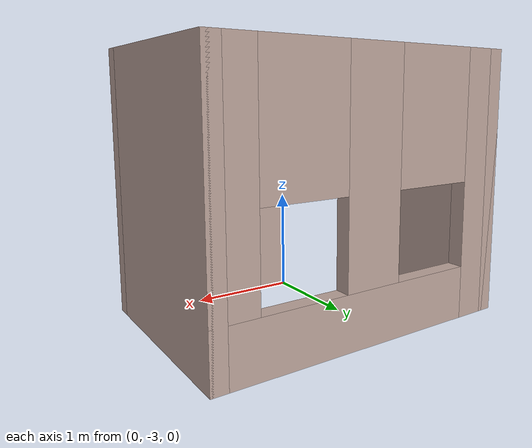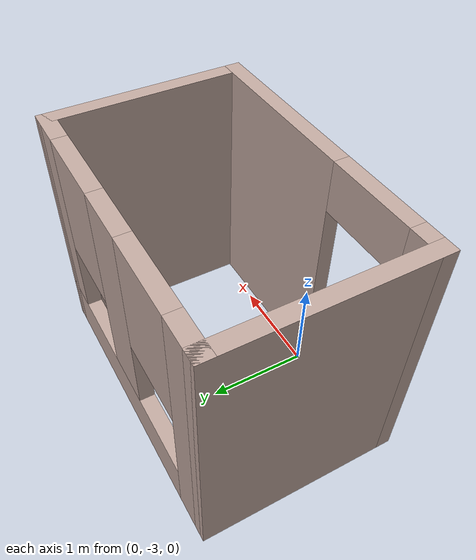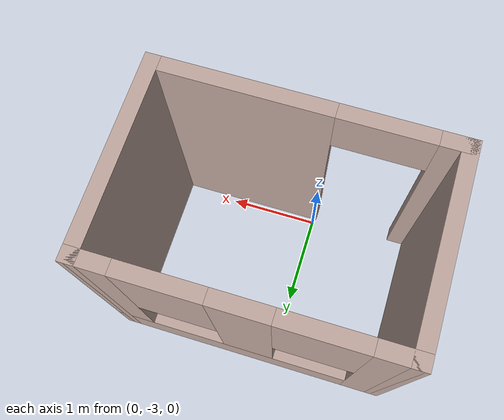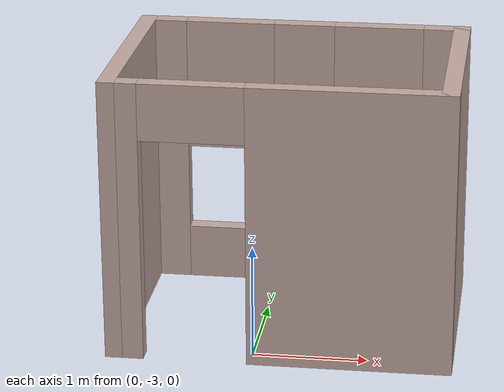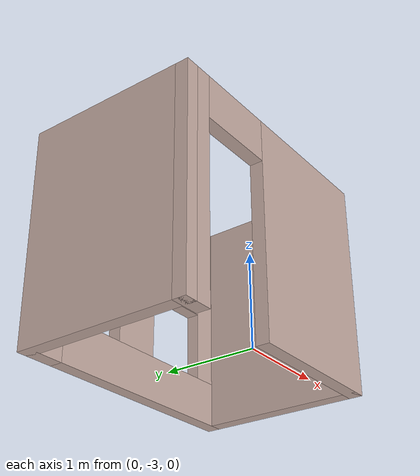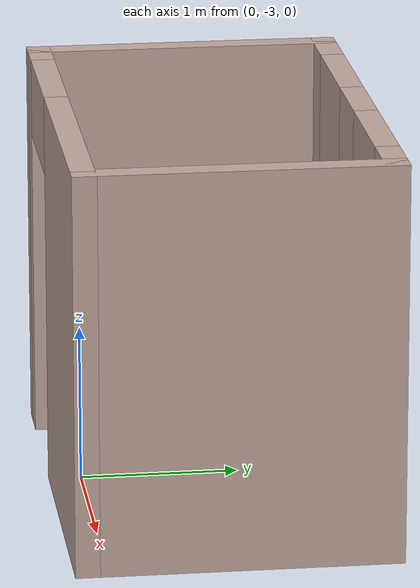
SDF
<?xml version='1.0'?>
<sdf version='1.7'>
  <model name='simple_room'>
    <pose>0.235 -1.6025 0 0 -0 0</pose>
    <link name='Wall_0'>
      <collision name='Wall_0_Collision'>
        <geometry>
          <box>
            <size>2 0.15 2.5</size>
          </box>
        </geometry>
        <pose>0 0 1.25 0 -0 0</pose>
      </collision>
      <visual name='Wall_0_Visual'>
        <pose>0 0 1.25 0 -0 0</pose>
        <geometry>
          <box>
            <size>2 0.15 2.5</size>
          </box>
        </geometry>
        <material>
          <script>
            <uri>file://media/materials/scripts/gazebo.material</uri>
            <name>Gazebo/Grey</name>
          </script>
          <ambient>0.760784 0.662745 0.627451 1</ambient>
        </material>
        <meta>
          <layer>0</layer>
        </meta>
      </visual>
      <pose>-1.425 -0.6025 0 0 -0 1.5708</pose>
    </link>
    <link name='Wall_1'>
      <pose>0 0.3225 0 0 -0 0</pose>
      <visual name='Wall_1_Visual_0'>
        <pose>-1.2825 0 1.25 0 -0 0</pose>
        <geometry>
          <box>
            <size>0.435 0.15 2.5</size>
          </box>
        </geometry>
        <material>
          <script>
            <uri>file://media/materials/scripts/gazebo.material</uri>
            <name>Gazebo/Grey</name>
          </script>
          <ambient>0.760784 0.662745 0.627451 1</ambient>
        </material>
        <meta>
          <layer>0</layer>
        </meta>
      </visual>
      <collision name='Wall_1_Collision_0'>
        <geometry>
          <box>
            <size>0.435 0.15 2.5</size>
          </box>
        </geometry>
        <pose>-1.2825 0 1.25 0 -0 0</pose>
      </collision>
      <visual name='Wall_1_Visual_1'>
        <pose>0.2175 0 0.25 0 -0 0</pose>
        <geometry>
          <box>
            <size>2.565 0.15 0.5</size>
          </box>
        </geometry>
        <material>
          <script>
            <uri>file://media/materials/scripts/gazebo.material</uri>
            <name>Gazebo/Grey</name>
          </script>
          <ambient>0.760784 0.662745 0.627451 1</ambient>
        </material>
        <meta>
          <layer>0</layer>
        </meta>
      </visual>
      <collision name='Wall_1_Collision_1'>
        <geometry>
          <box>
            <size>2.565 0.15 0.5</size>
          </box>
        </geometry>
        <pose>0.2175 0 0.25 0 -0 0</pose>
      </collision>
      <visual name='Wall_1_Visual_2'>
        <pose>0.01 0 1.5 0 -0 0</pose>
        <geometry>
          <box>
            <size>0.55 0.15 2</size>
          </box>
        </geometry>
        <material>
          <script>
            <uri>file://media/materials/scripts/gazebo.material</uri>
            <name>Gazebo/Grey</name>
          </script>
          <ambient>0.760784 0.662745 0.627451 1</ambient>
        </material>
        <meta>
          <layer>0</layer>
        </meta>
      </visual>
      <collision name='Wall_1_Collision_2'>
        <geometry>
          <box>
            <size>0.55 0.15 2</size>
          </box>
        </geometry>
        <pose>0.01 0 1.5 0 -0 0</pose>
      </collision>
      <visual name='Wall_1_Visual_3'>
        <pose>1.2925 0 1.5 0 -0 0</pose>
        <geometry>
          <box>
            <size>0.415 0.15 2</size>
          </box>
        </geometry>
        <material>
          <script>
            <uri>file://media/materials/scripts/gazebo.material</uri>
            <name>Gazebo/Grey</name>
          </script>
          <ambient>0.760784 0.662745 0.627451 1</ambient>
        </material>
        <meta>
          <layer>0</layer>
        </meta>
      </visual>
      <collision name='Wall_1_Collision_3'>
        <geometry>
          <box>
            <size>0.415 0.15 2</size>
          </box>
        </geometry>
        <pose>1.2925 0 1.5 0 -0 0</pose>
      </collision>
      <visual name='Wall_1_Visual_4'>
        <pose>-0.665 0 1.9 0 -0 0</pose>
        <geometry>
          <box>
            <size>0.8 0.15 1.2</size>
          </box>
        </geometry>
        <material>
          <script>
            <uri>file://media/materials/scripts/gazebo.material</uri>
            <name>Gazebo/Grey</name>
          </script>
          <ambient>0.760784 0.662745 0.627451 1</ambient>
        </material>
        <meta>
          <layer>0</layer>
        </meta>
      </visual>
      <collision name='Wall_1_Collision_4'>
        <geometry>
          <box>
            <size>0.8 0.15 1.2</size>
          </box>
        </geometry>
        <pose>-0.665 0 1.9 0 -0 0</pose>
      </collision>
      <visual name='Wall_1_Visual_5'>
        <pose>0.685 0 1.9 0 -0 0</pose>
        <geometry>
          <box>
            <size>0.8 0.15 1.2</size>
          </box>
        </geometry>
        <material>
          <script>
            <uri>file://media/materials/scripts/gazebo.material</uri>
            <name>Gazebo/Grey</name>
          </script>
          <ambient>0.760784 0.662745 0.627451 1</ambient>
        </material>
        <meta>
          <layer>0</layer>
        </meta>
      </visual>
      <collision name='Wall_1_Collision_5'>
        <geometry>
          <box>
            <size>0.8 0.15 1.2</size>
          </box>
        </geometry>
        <pose>0.685 0 1.9 0 -0 0</pose>
      </collision>
    </link>
    <link name='Wall_2'>
      <collision name='Wall_2_Collision'>
        <geometry>
          <box>
            <size>2 0.15 2.5</size>
          </box>
        </geometry>
        <pose>0 0 1.25 0 -0 0</pose>
      </collision>
      <visual name='Wall_2_Visual'>
        <pose>0 0 1.25 0 -0 0</pose>
        <geometry>
          <box>
            <size>2 0.15 2.5</size>
          </box>
        </geometry>
        <material>
          <script>
            <uri>file://media/materials/scripts/gazebo.material</uri>
            <name>Gazebo/Grey</name>
          </script>
          <ambient>0.760784 0.662745 0.627451 1</ambient>
        </material>
        <meta>
          <layer>0</layer>
        </meta>
      </visual>
      <pose>1.425 -0.6025 0 0 -0 -1.5708</pose>
    </link>
    <link name='Wall_3'>
      <pose>0 -1.5275 0 0 -0 3.14159</pose>
      <visual name='Wall_3_Visual_0'>
        <pose>-0.6175 0 1.25 0 -0 0</pose>
        <geometry>
          <box>
            <size>1.765 0.15 2.5</size>
          </box>
        </geometry>
        <material>
          <script>
            <uri>file://media/materials/scripts/gazebo.material</uri>
            <name>Gazebo/Grey</name>
          </script>
          <ambient>0.760784 0.662745 0.627451 1</ambient>
        </material>
        <meta>
          <layer>0</layer>
        </meta>
      </visual>
      <collision name='Wall_3_Collision_0'>
        <geometry>
          <box>
            <size>1.765 0.15 2.5</size>
          </box>
        </geometry>
        <pose>-0.6175 0 1.25 0 -0 0</pose>
      </collision>
      <visual name='Wall_3_Visual_1'>
        <pose>1.3325 0 1.25 0 -0 0</pose>
        <geometry>
          <box>
            <size>0.335 0.15 2.5</size>
          </box>
        </geometry>
        <material>
          <script>
            <uri>file://media/materials/scripts/gazebo.material</uri>
            <name>Gazebo/Grey</name>
          </script>
          <ambient>0.760784 0.662745 0.627451 1</ambient>
        </material>
        <meta>
          <layer>0</layer>
        </meta>
      </visual>
      <collision name='Wall_3_Collision_1'>
        <geometry>
          <box>
            <size>0.335 0.15 2.5</size>
          </box>
        </geometry>
        <pose>1.3325 0 1.25 0 -0 0</pose>
      </collision>
      <visual name='Wall_3_Visual_2'>
        <pose>0.715 0 2.25 0 -0 0</pose>
        <geometry>
          <box>
            <size>0.9 0.15 0.5</size>
          </box>
        </geometry>
        <material>
          <script>
            <uri>file://media/materials/scripts/gazebo.material</uri>
            <name>Gazebo/Grey</name>
          </script>
          <ambient>0.760784 0.662745 0.627451 1</ambient>
        </material>
        <meta>
          <layer>0</layer>
        </meta>
      </visual>
      <collision name='Wall_3_Collision_2'>
        <geometry>
          <box>
            <size>0.9 0.15 0.5</size>
          </box>
        </geometry>
        <pose>0.715 0 2.25 0 -0 0</pose>
      </collision>
    </link>
    <static>1</static>
  </model>
</sdf>
